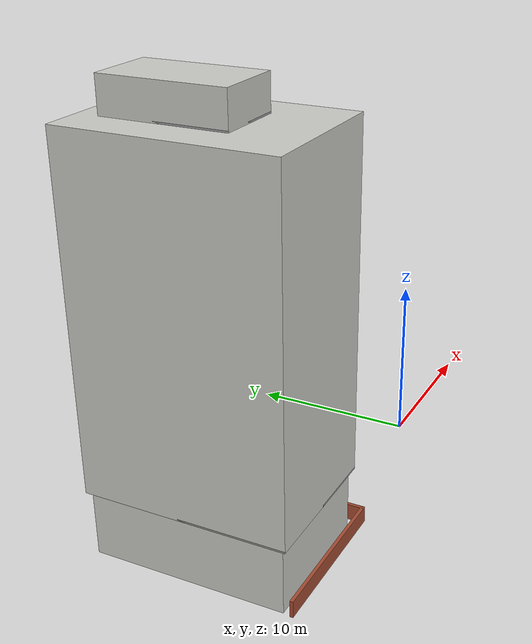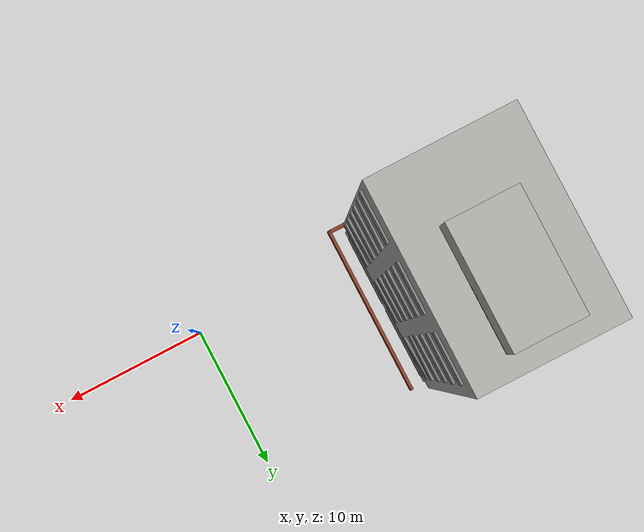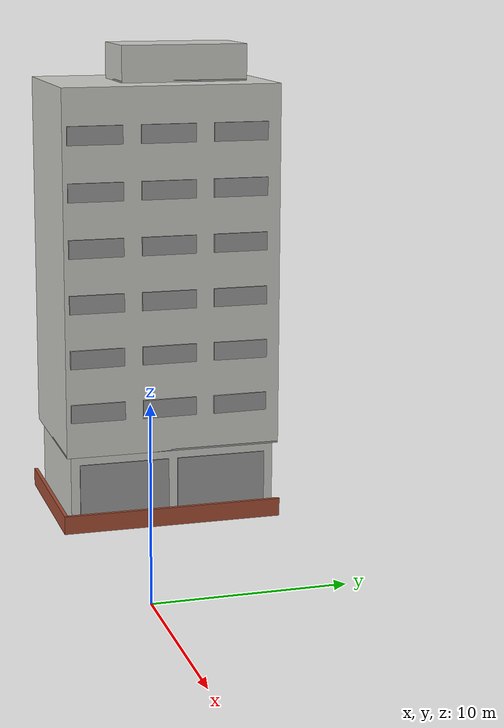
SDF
<?xml version='1.0'?>
<sdf version='1.6'>
  <model name='info_building'>
    <pose frame=''>-15.575 4.075 0 0 -0 0</pose>
    <link name='Door_1'>
      <collision name='Door_1_Collision'>
        <geometry>
          <box>
            <size>5 0.17 3</size>
          </box>
        </geometry>
        <pose frame=''>0 0 1.5 0 -0 0</pose>
      </collision>
      <visual name='Door_1_Visual'>
        <pose frame=''>0 0 1.5 0 -0 0</pose>
        <geometry>
          <box>
            <size>5 0.17 3</size>
          </box>
        </geometry>
        <material>
          <script>
            <uri>file://media/materials/scripts/gazebo.material</uri>
            <name>Gazebo/Grey</name>
          </script>
        </material>
      </visual>
      <pose frame=''>3.575 -2.575 0.5 0 -0 1.56828</pose>
    </link>
    <link name='Door_2'>
      <collision name='Door_2_Collision'>
        <geometry>
          <box>
            <size>5 0.17 3</size>
          </box>
        </geometry>
        <pose frame=''>0 0 1.5 0 -0 0</pose>
      </collision>
      <visual name='Door_2_Visual'>
        <pose frame=''>0 0 1.5 0 -0 0</pose>
        <geometry>
          <box>
            <size>5 0.17 3</size>
          </box>
        </geometry>
        <material>
          <script>
            <uri>file://media/materials/scripts/gazebo.material</uri>
            <name>Gazebo/Grey</name>
          </script>
        </material>
      </visual>
      <pose frame=''>3.575 2.925 0.5 0 -0 1.5733</pose>
    </link>
    <link name='Floor_1'>
      <collision name='Floor_1_Collision'>
        <geometry>
          <box>
            <size>8.5 12 0.1</size>
          </box>
        </geometry>
        <pose frame=''>0 0 0.05 0 -0 0</pose>
      </collision>
      <visual name='Floor_1_Visual'>
        <pose frame=''>0 0 0.05 0 -0 0</pose>
        <geometry>
          <box>
            <size>8.5 12 0.1</size>
          </box>
        </geometry>
        <material>
          <script>
            <uri>file://media/materials/scripts/gazebo.material</uri>
            <name>Gazebo/Grey</name>
          </script>
          <ambient>1 1 1 1</ambient>
        </material>
      </visual>
      <pose frame=''>-0.425 0.174999 4 0 -0 0</pose>
    </link>
    <link name='Floor_2'>
      <collision name='Floor_2_Collision'>
        <geometry>
          <box>
            <size>4 7 0.1</size>
          </box>
        </geometry>
        <pose frame=''>0 0 0.05 0 -0 0</pose>
      </collision>
      <visual name='Floor_2_Visual'>
        <pose frame=''>0 0 0.05 0 -0 0</pose>
        <geometry>
          <box>
            <size>4 7 0.1</size>
          </box>
        </geometry>
        <material>
          <script>
            <uri>file://media/materials/scripts/gazebo.material</uri>
            <name>Gazebo/Grey</name>
          </script>
          <ambient>1 1 1 1</ambient>
        </material>
      </visual>
      <pose frame=''>-0.425 1.425 24 0 -0 0</pose>
    </link>
    <link name='Wall_11'>
      <collision name='Wall_11_Collision'>
        <geometry>
          <box>
            <size>12.2 0.2 1</size>
          </box>
        </geometry>
        <pose frame=''>0 0 0.5 0 -0 0</pose>
      </collision>
      <visual name='Wall_11_Visual'>
        <pose frame=''>0 0 0.5 0 -0 0</pose>
        <geometry>
          <box>
            <size>12.2 0.2 1</size>
          </box>
        </geometry>
        <material>
          <script>
            <uri>file://media/materials/scripts/gazebo.material</uri>
            <name>Gazebo/Bricks</name>
          </script>
          <ambient>1 1 1 1</ambient>
        </material>
      </visual>
      <pose frame=''>4.575 -0.075001 0 0 -0 1.5708</pose>
    </link>
    <link name='Wall_15'>
      <collision name='Wall_15_Collision'>
        <geometry>
          <box>
            <size>11.5 8 4</size>
          </box>
        </geometry>
        <pose frame=''>0 0 2 0 -0 0</pose>
      </collision>
      <visual name='Wall_15_Visual'>
        <pose frame=''>0 0 2 0 -0 0</pose>
        <geometry>
          <box>
            <size>11.5 8 4</size>
          </box>
        </geometry>
        <material>
          <script>
            <uri>file://media/materials/scripts/gazebo.material</uri>
            <name>Gazebo/CeilingTiled</name>
          </script>
          <ambient>0.231373 0.141176 0.0509804 1</ambient>
        </material>
      </visual>
      <pose frame=''>-0.425 0.174999 0 0 -0 1.5708</pose>
    </link>
    <link name='Wall_19'>
      <collision name='Wall_19_Collision'>
        <geometry>
          <box>
            <size>12 8.5 20</size>
          </box>
        </geometry>
        <pose frame=''>0 0 10 0 -0 0</pose>
      </collision>
      <visual name='Wall_19_Visual'>
        <pose frame=''>0 0 10 0 -0 0</pose>
        <geometry>
          <box>
            <size>12 8.5 20</size>
          </box>
        </geometry>
        <material>
          <script>
            <uri>file://media/materials/scripts/gazebo.material</uri>
            <name>Gazebo/CeilingTiled</name>
          </script>
          <ambient>0.505882 0.505882 0.505882 1</ambient>
        </material>
      </visual>
      <pose frame=''>-0.425 0.174999 4 0 -0 1.5708</pose>
    </link>
    <link name='Wall_20'>
      <collision name='Wall_20_Collision'>
        <geometry>
          <box>
            <size>7 4 2</size>
          </box>
        </geometry>
        <pose frame=''>0 0 1 0 -0 0</pose>
      </collision>
      <visual name='Wall_20_Visual'>
        <pose frame=''>0 0 1 0 -0 0</pose>
        <geometry>
          <box>
            <size>7 4 2</size>
          </box>
        </geometry>
        <material>
          <script>
            <uri>file://media/materials/scripts/gazebo.material</uri>
            <name>Gazebo/CeilingTiled</name>
          </script>
          <ambient>0.435294 0.796078 0.67451 1</ambient>
        </material>
      </visual>
      <pose frame=''>-0.425 1.425 24 0 -0 1.5708</pose>
    </link>
    <link name='Wall_9'>
      <collision name='Wall_9_Collision'>
        <geometry>
          <box>
            <size>9.2 0.2 1</size>
          </box>
        </geometry>
        <pose frame=''>0 0 0.5 0 -0 0</pose>
      </collision>
      <visual name='Wall_9_Visual'>
        <pose frame=''>0 0 0.5 0 -0 0</pose>
        <geometry>
          <box>
            <size>9.2 0.2 1</size>
          </box>
        </geometry>
        <material>
          <script>
            <uri>file://media/materials/scripts/gazebo.material</uri>
            <name>Gazebo/Bricks</name>
          </script>
          <ambient>1 1 1 1</ambient>
        </material>
      </visual>
      <pose frame=''>0.075 -6.075 0 0 -0 3.14159</pose>
    </link>
    <link name='Window_0'>
      <collision name='Window_0_Collision'>
        <geometry>
          <box>
            <size>3 0.17 1</size>
          </box>
        </geometry>
        <pose frame=''>0 0 0.5 0 -0 0</pose>
      </collision>
      <visual name='Window_0_Visual'>
        <pose frame=''>0 0 0.5 0 -0 0</pose>
        <geometry>
          <box>
            <size>3 0.17 1</size>
          </box>
        </geometry>
        <material>
          <script>
            <uri>file://media/materials/scripts/gazebo.material</uri>
            <name>Gazebo/Grey</name>
          </script>
        </material>
      </visual>
      <pose frame=''>3.875 -4.075 6 0 -0 1.57704</pose>
    </link>
    <link name='Window_11'>
      <collision name='Window_11_Collision'>
        <geometry>
          <box>
            <size>3 0.17 1</size>
          </box>
        </geometry>
        <pose frame=''>0 0 0.5 0 -0 0</pose>
      </collision>
      <visual name='Window_11_Visual'>
        <pose frame=''>0 0 0.5 0 -0 0</pose>
        <geometry>
          <box>
            <size>3 0.17 1</size>
          </box>
        </geometry>
        <material>
          <script>
            <uri>file://media/materials/scripts/gazebo.material</uri>
            <name>Gazebo/Grey</name>
          </script>
        </material>
      </visual>
      <pose frame=''>3.875 -4.075 15 0 -0 1.57983</pose>
    </link>
    <link name='Window_12'>
      <collision name='Window_12_Collision'>
        <geometry>
          <box>
            <size>3 0.17 1</size>
          </box>
        </geometry>
        <pose frame=''>0 0 0.5 0 -0 0</pose>
      </collision>
      <visual name='Window_12_Visual'>
        <pose frame=''>0 0 0.5 0 -0 0</pose>
        <geometry>
          <box>
            <size>3 0.17 1</size>
          </box>
        </geometry>
        <material>
          <script>
            <uri>file://media/materials/scripts/gazebo.material</uri>
            <name>Gazebo/Grey</name>
          </script>
        </material>
      </visual>
      <pose frame=''>3.875 -0.075001 15 0 -0 1.58105</pose>
    </link>
    <link name='Window_13'>
      <collision name='Window_13_Collision'>
        <geometry>
          <box>
            <size>3 0.17 1</size>
          </box>
        </geometry>
        <pose frame=''>0 0 0.5 0 -0 0</pose>
      </collision>
      <visual name='Window_13_Visual'>
        <pose frame=''>0 0 0.5 0 -0 0</pose>
        <geometry>
          <box>
            <size>3 0.17 1</size>
          </box>
        </geometry>
        <material>
          <script>
            <uri>file://media/materials/scripts/gazebo.material</uri>
            <name>Gazebo/Grey</name>
          </script>
        </material>
      </visual>
      <pose frame=''>3.875 3.925 15 0 -0 1.57717</pose>
    </link>
    <link name='Window_14'>
      <collision name='Window_14_Collision'>
        <geometry>
          <box>
            <size>3 0.17 1</size>
          </box>
        </geometry>
        <pose frame=''>0 0 0.5 0 -0 0</pose>
      </collision>
      <visual name='Window_14_Visual'>
        <pose frame=''>0 0 0.5 0 -0 0</pose>
        <geometry>
          <box>
            <size>3 0.17 1</size>
          </box>
        </geometry>
        <material>
          <script>
            <uri>file://media/materials/scripts/gazebo.material</uri>
            <name>Gazebo/Grey</name>
          </script>
        </material>
      </visual>
      <pose frame=''>3.875 -4.075 18 0 -0 1.55591</pose>
    </link>
    <link name='Window_15'>
      <collision name='Window_15_Collision'>
        <geometry>
          <box>
            <size>3 0.17 1</size>
          </box>
        </geometry>
        <pose frame=''>0 0 0.5 0 -0 0</pose>
      </collision>
      <visual name='Window_15_Visual'>
        <pose frame=''>0 0 0.5 0 -0 0</pose>
        <geometry>
          <box>
            <size>3 0.17 1</size>
          </box>
        </geometry>
        <material>
          <script>
            <uri>file://media/materials/scripts/gazebo.material</uri>
            <name>Gazebo/Grey</name>
          </script>
        </material>
      </visual>
      <pose frame=''>3.875 -0.075001 18 0 -0 1.57217</pose>
    </link>
    <link name='Window_16'>
      <collision name='Window_16_Collision'>
        <geometry>
          <box>
            <size>3 0.17 1</size>
          </box>
        </geometry>
        <pose frame=''>0 0 0.5 0 -0 0</pose>
      </collision>
      <visual name='Window_16_Visual'>
        <pose frame=''>0 0 0.5 0 -0 0</pose>
        <geometry>
          <box>
            <size>3 0.17 1</size>
          </box>
        </geometry>
        <material>
          <script>
            <uri>file://media/materials/scripts/gazebo.material</uri>
            <name>Gazebo/Grey</name>
          </script>
        </material>
      </visual>
      <pose frame=''>3.875 3.925 18 0 -0 1.56411</pose>
    </link>
    <link name='Window_17'>
      <collision name='Window_17_Collision'>
        <geometry>
          <box>
            <size>3 0.17 1</size>
          </box>
        </geometry>
        <pose frame=''>0 0 0.5 0 -0 0</pose>
      </collision>
      <visual name='Window_17_Visual'>
        <pose frame=''>0 0 0.5 0 -0 0</pose>
        <geometry>
          <box>
            <size>3 0.17 1</size>
          </box>
        </geometry>
        <material>
          <script>
            <uri>file://media/materials/scripts/gazebo.material</uri>
            <name>Gazebo/Grey</name>
          </script>
        </material>
      </visual>
      <pose frame=''>3.875 -4.075 21 0 -0 1.57699</pose>
    </link>
    <link name='Window_18'>
      <collision name='Window_18_Collision'>
        <geometry>
          <box>
            <size>3 0.17 1</size>
          </box>
        </geometry>
        <pose frame=''>0 0 0.5 0 -0 0</pose>
      </collision>
      <visual name='Window_18_Visual'>
        <pose frame=''>0 0 0.5 0 -0 0</pose>
        <geometry>
          <box>
            <size>3 0.17 1</size>
          </box>
        </geometry>
        <material>
          <script>
            <uri>file://media/materials/scripts/gazebo.material</uri>
            <name>Gazebo/Grey</name>
          </script>
        </material>
      </visual>
      <pose frame=''>3.875 -0.075001 21 0 -0 1.57095</pose>
    </link>
    <link name='Window_19'>
      <collision name='Window_19_Collision'>
        <geometry>
          <box>
            <size>3 0.17 1</size>
          </box>
        </geometry>
        <pose frame=''>0 0 0.5 0 -0 0</pose>
      </collision>
      <visual name='Window_19_Visual'>
        <pose frame=''>0 0 0.5 0 -0 0</pose>
        <geometry>
          <box>
            <size>3 0.17 1</size>
          </box>
        </geometry>
        <material>
          <script>
            <uri>file://media/materials/scripts/gazebo.material</uri>
            <name>Gazebo/Grey</name>
          </script>
        </material>
      </visual>
      <pose frame=''>3.875 3.925 21 0 -0 1.5708</pose>
    </link>
    <link name='Window_2'>
      <collision name='Window_2_Collision'>
        <geometry>
          <box>
            <size>3 0.17 1</size>
          </box>
        </geometry>
        <pose frame=''>0 0 0.5 0 -0 0</pose>
      </collision>
      <visual name='Window_2_Visual'>
        <pose frame=''>0 0 0.5 0 -0 0</pose>
        <geometry>
          <box>
            <size>3 0.17 1</size>
          </box>
        </geometry>
        <material>
          <script>
            <uri>file://media/materials/scripts/gazebo.material</uri>
            <name>Gazebo/Grey</name>
          </script>
        </material>
      </visual>
      <pose frame=''>3.875 -0.075001 6 0 -0 1.5855</pose>
    </link>
    <link name='Window_3'>
      <collision name='Window_3_Collision'>
        <geometry>
          <box>
            <size>3 0.17 1</size>
          </box>
        </geometry>
        <pose frame=''>0 0 0.5 0 -0 0</pose>
      </collision>
      <visual name='Window_3_Visual'>
        <pose frame=''>0 0 0.5 0 -0 0</pose>
        <geometry>
          <box>
            <size>3 0.17 1</size>
          </box>
        </geometry>
        <material>
          <script>
            <uri>file://media/materials/scripts/gazebo.material</uri>
            <name>Gazebo/Grey</name>
          </script>
        </material>
      </visual>
      <pose frame=''>3.875 3.925 6 0 -0 1.60806</pose>
    </link>
    <link name='Window_4'>
      <collision name='Window_4_Collision'>
        <geometry>
          <box>
            <size>3 0.17 1</size>
          </box>
        </geometry>
        <pose frame=''>0 0 0.5 0 -0 0</pose>
      </collision>
      <visual name='Window_4_Visual'>
        <pose frame=''>0 0 0.5 0 -0 0</pose>
        <geometry>
          <box>
            <size>3 0.17 1</size>
          </box>
        </geometry>
        <material>
          <script>
            <uri>file://media/materials/scripts/gazebo.material</uri>
            <name>Gazebo/Grey</name>
          </script>
        </material>
      </visual>
      <pose frame=''>3.875 -0.075001 9 0 -0 1.58223</pose>
    </link>
    <link name='Window_5'>
      <collision name='Window_5_Collision'>
        <geometry>
          <box>
            <size>3 0.17 1</size>
          </box>
        </geometry>
        <pose frame=''>0 0 0.5 0 -0 0</pose>
      </collision>
      <visual name='Window_5_Visual'>
        <pose frame=''>0 0 0.5 0 -0 0</pose>
        <geometry>
          <box>
            <size>3 0.17 1</size>
          </box>
        </geometry>
        <material>
          <script>
            <uri>file://media/materials/scripts/gazebo.material</uri>
            <name>Gazebo/Grey</name>
          </script>
        </material>
      </visual>
      <pose frame=''>3.875 -4.075 9 0 -0 1.60111</pose>
    </link>
    <link name='Window_6'>
      <collision name='Window_6_Collision'>
        <geometry>
          <box>
            <size>3 0.17 1</size>
          </box>
        </geometry>
        <pose frame=''>0 0 0.5 0 -0 0</pose>
      </collision>
      <visual name='Window_6_Visual'>
        <pose frame=''>0 0 0.5 0 -0 0</pose>
        <geometry>
          <box>
            <size>3 0.17 1</size>
          </box>
        </geometry>
        <material>
          <script>
            <uri>file://media/materials/scripts/gazebo.material</uri>
            <name>Gazebo/Grey</name>
          </script>
        </material>
      </visual>
      <pose frame=''>3.875 3.925 9 0 -0 1.55202</pose>
    </link>
    <link name='Window_7'>
      <collision name='Window_7_Collision'>
        <geometry>
          <box>
            <size>3 0.17 1</size>
          </box>
        </geometry>
        <pose frame=''>0 0 0.5 0 -0 0</pose>
      </collision>
      <visual name='Window_7_Visual'>
        <pose frame=''>0 0 0.5 0 -0 0</pose>
        <geometry>
          <box>
            <size>3 0.17 1</size>
          </box>
        </geometry>
        <material>
          <script>
            <uri>file://media/materials/scripts/gazebo.material</uri>
            <name>Gazebo/Grey</name>
          </script>
        </material>
      </visual>
      <pose frame=''>3.875 -4.075 12 0 -0 1.5708</pose>
    </link>
    <link name='Window_8'>
      <collision name='Window_8_Collision'>
        <geometry>
          <box>
            <size>3 0.17 1</size>
          </box>
        </geometry>
        <pose frame=''>0 0 0.5 0 -0 0</pose>
      </collision>
      <visual name='Window_8_Visual'>
        <pose frame=''>0 0 0.5 0 -0 0</pose>
        <geometry>
          <box>
            <size>3 0.17 1</size>
          </box>
        </geometry>
        <material>
          <script>
            <uri>file://media/materials/scripts/gazebo.material</uri>
            <name>Gazebo/Grey</name>
          </script>
        </material>
      </visual>
      <pose frame=''>3.875 -0.075001 12 0 -0 1.56933</pose>
    </link>
    <link name='Window_9'>
      <collision name='Window_9_Collision'>
        <geometry>
          <box>
            <size>3 0.17 1</size>
          </box>
        </geometry>
        <pose frame=''>0 0 0.5 0 -0 0</pose>
      </collision>
      <visual name='Window_9_Visual'>
        <pose frame=''>0 0 0.5 0 -0 0</pose>
        <geometry>
          <box>
            <size>3 0.17 1</size>
          </box>
        </geometry>
        <material>
          <script>
            <uri>file://media/materials/scripts/gazebo.material</uri>
            <name>Gazebo/Grey</name>
          </script>
        </material>
      </visual>
      <pose frame=''>3.875 3.925 12 0 -0 1.57549</pose>
    </link>
    <static>1</static>
  </model>
</sdf>
